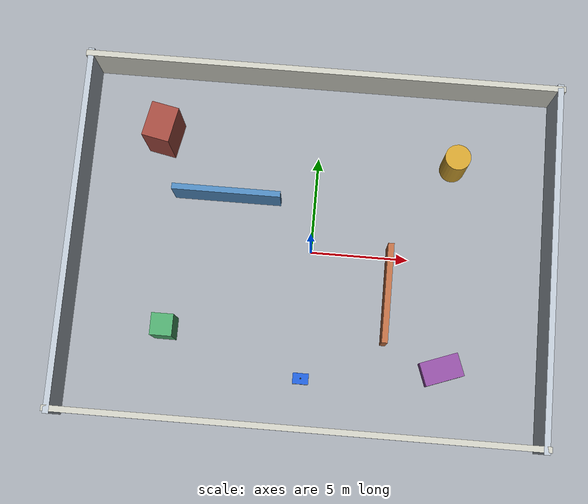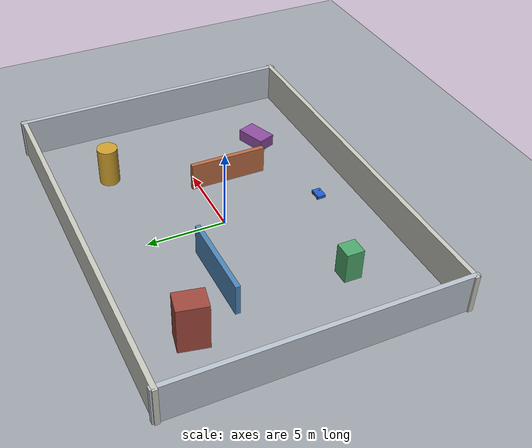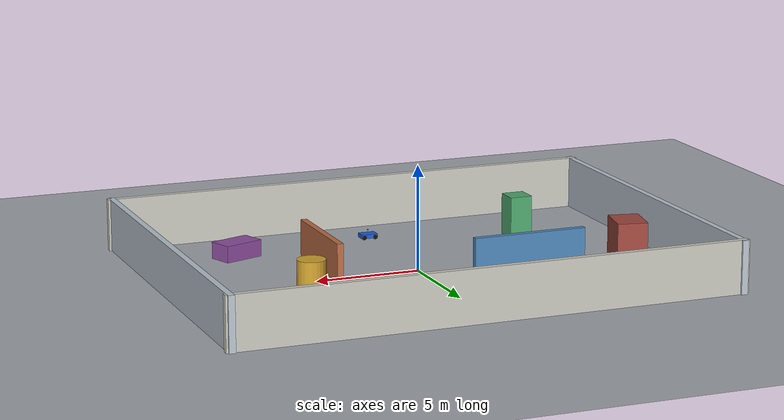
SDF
<?xml version="1.0"?>
<sdf version="1.8">
  <world name="lightning_baseline">
    <physics name="1ms" type="ignored">
      <max_step_size>0.001</max_step_size>
      <real_time_factor>1.0</real_time_factor>
    </physics>

    <plugin filename="libignition-gazebo-physics-system.so"
            name="ignition::gazebo::systems::Physics"/>
    <plugin filename="libignition-gazebo-user-commands-system.so"
            name="ignition::gazebo::systems::UserCommands"/>
    <plugin filename="libignition-gazebo-scene-broadcaster-system.so"
            name="ignition::gazebo::systems::SceneBroadcaster"/>
    <plugin filename="libignition-gazebo-imu-system.so"
            name="ignition::gazebo::systems::Imu"/>
    <plugin filename="libignition-gazebo-sensors-system.so"
            name="ignition::gazebo::systems::Sensors">
      <render_engine>ogre2</render_engine>
    </plugin>

    <light type="directional" name="sun">
      <pose>0 0 12 0 0 0</pose>
      <cast_shadows>true</cast_shadows>
      <diffuse>0.85 0.85 0.85 1</diffuse>
      <specular>0.2 0.2 0.2 1</specular>
      <direction>-0.5 0.2 -0.9</direction>
    </light>

    <model name="ground_plane">
      <static>true</static>
      <link name="ground_link">
        <collision name="collision">
          <geometry><plane><normal>0 0 1</normal><size>40 34</size></plane></geometry>
        </collision>
        <visual name="visual">
          <geometry><plane><normal>0 0 1</normal><size>40 34</size></plane></geometry>
          <material>
            <ambient>0.55 0.57 0.60 1</ambient>
            <diffuse>0.62 0.64 0.67 1</diffuse>
          </material>
        </visual>
      </link>
    </model>

    <!-- Four perimeter walls leave a 24 m x 18 m driving area. -->
    <model name="wall_north"><static>true</static><pose>0 9 1.25 0 0 0</pose><link name="link">
      <collision name="collision"><geometry><box><size>24.5 0.3 2.5</size></box></geometry></collision>
      <visual name="visual"><geometry><box><size>24.5 0.3 2.5</size></box></geometry><material><diffuse>0.78 0.78 0.74 1</diffuse></material></visual>
    </link></model>
    <model name="wall_south"><static>true</static><pose>0 -9 1.25 0 0 0</pose><link name="link">
      <collision name="collision"><geometry><box><size>24.5 0.3 2.5</size></box></geometry></collision>
      <visual name="visual"><geometry><box><size>24.5 0.3 2.5</size></box></geometry><material><diffuse>0.78 0.78 0.74 1</diffuse></material></visual>
    </link></model>
    <model name="wall_east"><static>true</static><pose>12 0 1.25 0 0 0</pose><link name="link">
      <collision name="collision"><geometry><box><size>0.3 18.5 2.5</size></box></geometry></collision>
      <visual name="visual"><geometry><box><size>0.3 18.5 2.5</size></box></geometry><material><diffuse>0.72 0.76 0.80 1</diffuse></material></visual>
    </link></model>
    <model name="wall_west"><static>true</static><pose>-12 0 1.25 0 0 0</pose><link name="link">
      <collision name="collision"><geometry><box><size>0.3 18.5 2.5</size></box></geometry></collision>
      <visual name="visual"><geometry><box><size>0.3 18.5 2.5</size></box></geometry><material><diffuse>0.72 0.76 0.80 1</diffuse></material></visual>
    </link></model>

    <!-- Asymmetric internal geometry provides useful LiDAR constraints. -->
    <model name="inner_wall_a"><static>true</static><pose>-4.5 2.5 1.0 0 0 0</pose><link name="link">
      <collision name="collision"><geometry><box><size>5.5 0.3 2.0</size></box></geometry></collision>
      <visual name="visual"><geometry><box><size>5.5 0.3 2.0</size></box></geometry><material><diffuse>0.30 0.52 0.72 1</diffuse></material></visual>
    </link></model>
    <model name="inner_wall_b"><static>true</static><pose>4.0 -2.0 0.9 0 0 1.5708</pose><link name="link">
      <collision name="collision"><geometry><box><size>5.0 0.3 1.8</size></box></geometry></collision>
      <visual name="visual"><geometry><box><size>5.0 0.3 1.8</size></box></geometry><material><diffuse>0.72 0.42 0.26 1</diffuse></material></visual>
    </link></model>

    <model name="pillar_round"><static>true</static><pose>7 5 1.25 0 0 0</pose><link name="link">
      <collision name="collision"><geometry><cylinder><radius>0.65</radius><length>2.5</length></cylinder></geometry></collision>
      <visual name="visual"><geometry><cylinder><radius>0.65</radius><length>2.5</length></cylinder></geometry><material><diffuse>0.80 0.62 0.18 1</diffuse></material></visual>
    </link></model>
    <model name="pillar_square"><static>true</static><pose>-7 -4.5 1.0 0 0 0</pose><link name="link">
      <collision name="collision"><geometry><box><size>1.1 1.1 2.0</size></box></geometry></collision>
      <visual name="visual"><geometry><box><size>1.1 1.1 2.0</size></box></geometry><material><diffuse>0.30 0.65 0.42 1</diffuse></material></visual>
    </link></model>
    <model name="low_box"><static>true</static><pose>7 -5.5 0.4 0 0 0.35</pose><link name="link">
      <collision name="collision"><geometry><box><size>2.0 1.2 0.8</size></box></geometry></collision>
      <visual name="visual"><geometry><box><size>2.0 1.2 0.8</size></box></geometry><material><diffuse>0.55 0.30 0.62 1</diffuse></material></visual>
    </link></model>
    <model name="tall_box"><static>true</static><pose>-8 5.5 1.5 0 0 -0.2</pose><link name="link">
      <collision name="collision"><geometry><box><size>1.4 1.8 3.0</size></box></geometry></collision>
      <visual name="visual"><geometry><box><size>1.4 1.8 3.0</size></box></geometry><material><diffuse>0.62 0.28 0.24 1</diffuse></material></visual>
    </link></model>

    <include>
      <uri>model://lightning_cart</uri>
      <name>lightning_cart</name>
      <pose>0 -6.5 0 0 0 0</pose>
    </include>
  </world>
</sdf>

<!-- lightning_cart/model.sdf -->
<sdf version="1.8">
  <model name="lightning_cart" xmlns:ignition="http://ignitionrobotics.org/schema">
    <self_collide>false</self_collide>

    <link name="base_link">
      <pose>0 0 0.16 0 0 0</pose>
      <inertial>
        <mass>18.0</mass>
        <inertia>
          <ixx>0.514</ixx><iyy>1.006</iyy><izz>1.398</izz>
          <ixy>0</ixy><ixz>0</ixz><iyz>0</iyz>
        </inertia>
      </inertial>
      <collision name="collision">
        <geometry><box><size>0.80 0.55 0.20</size></box></geometry>
      </collision>
      <visual name="visual">
        <geometry><box><size>0.80 0.55 0.20</size></box></geometry>
        <material>
          <ambient>0.10 0.28 0.62 1</ambient>
          <diffuse>0.12 0.36 0.82 1</diffuse>
        </material>
      </visual>
      <sensor name="imu_sensor" type="imu">
        <pose>0 0 0 0 0 0</pose>
        <always_on>true</always_on>
        <update_rate>200</update_rate>
        <topic>/imu</topic>
        <enable_metrics>true</enable_metrics>
      </sensor>
    </link>

    <link name="livox_frame">
      <pose>0 0 0.44 0 0 0</pose>
      <inertial>
        <mass>0.265</mass>
        <inertia>
          <ixx>0.00045</ixx><iyy>0.00045</iyy><izz>0.00045</izz>
          <ixy>0</ixy><ixz>0</ixz><iyz>0</iyz>
        </inertia>
      </inertial>
      <collision name="collision">
        <geometry><cylinder><radius>0.035</radius><length>0.055</length></cylinder></geometry>
      </collision>
      <visual name="visual">
        <geometry><cylinder><radius>0.035</radius><length>0.055</length></cylinder></geometry>
        <material><diffuse>0.12 0.12 0.12 1</diffuse></material>
      </visual>
      <sensor name="mid360_sim" type="gpu_lidar">
        <pose>0 0 0 0 0 0</pose>
        <ignition_frame_id>livox_frame</ignition_frame_id>
        <always_on>true</always_on>
        <update_rate>10</update_rate>
        <topic>/livox/lidar</topic>
        <visualize>true</visualize>
        <lidar>
          <scan>
            <horizontal>
              <samples>720</samples><resolution>1</resolution>
              <min_angle>-3.14159265</min_angle><max_angle>3.14159265</max_angle>
            </horizontal>
            <vertical>
              <samples>24</samples><resolution>1</resolution>
              <min_angle>-0.12217305</min_angle><max_angle>0.90757121</max_angle>
            </vertical>
          </scan>
          <range><min>0.10</min><max>40.0</max><resolution>0.01</resolution></range>
          <noise><type>gaussian</type><mean>0.0</mean><stddev>0.01</stddev></noise>
        </lidar>
      </sensor>
    </link>

    <link name="front_left_wheel">
      <pose>0.28 0.25 0.12 1.5708 0 0</pose>
      <inertial><mass>1.0</mass><inertia><ixx>0.0078</ixx><iyy>0.0078</iyy><izz>0.0144</izz><ixy>0</ixy><ixz>0</ixz><iyz>0</iyz></inertia></inertial>
      <collision name="collision">
        <geometry><cylinder><radius>0.12</radius><length>0.07</length></cylinder></geometry>
        <surface><friction><ode><mu>1.0</mu><mu2>0.0</mu2><fdir1 ignition:expressed_in="base_link">1 -1 0</fdir1></ode></friction></surface>
      </collision>
      <visual name="visual"><geometry><cylinder><radius>0.12</radius><length>0.07</length></cylinder></geometry><material><diffuse>0.05 0.05 0.05 1</diffuse></material></visual>
    </link>

    <link name="front_right_wheel">
      <pose>0.28 -0.25 0.12 1.5708 0 0</pose>
      <inertial><mass>1.0</mass><inertia><ixx>0.0078</ixx><iyy>0.0078</iyy><izz>0.0144</izz><ixy>0</ixy><ixz>0</ixz><iyz>0</iyz></inertia></inertial>
      <collision name="collision">
        <geometry><cylinder><radius>0.12</radius><length>0.07</length></cylinder></geometry>
        <surface><friction><ode><mu>1.0</mu><mu2>0.0</mu2><fdir1 ignition:expressed_in="base_link">1 1 0</fdir1></ode></friction></surface>
      </collision>
      <visual name="visual"><geometry><cylinder><radius>0.12</radius><length>0.07</length></cylinder></geometry><material><diffuse>0.05 0.05 0.05 1</diffuse></material></visual>
    </link>

    <link name="rear_left_wheel">
      <pose>-0.28 0.25 0.12 1.5708 0 0</pose>
      <inertial><mass>1.0</mass><inertia><ixx>0.0078</ixx><iyy>0.0078</iyy><izz>0.0144</izz><ixy>0</ixy><ixz>0</ixz><iyz>0</iyz></inertia></inertial>
      <collision name="collision">
        <geometry><cylinder><radius>0.12</radius><length>0.07</length></cylinder></geometry>
        <surface><friction><ode><mu>1.0</mu><mu2>0.0</mu2><fdir1 ignition:expressed_in="base_link">1 1 0</fdir1></ode></friction></surface>
      </collision>
      <visual name="visual"><geometry><cylinder><radius>0.12</radius><length>0.07</length></cylinder></geometry><material><diffuse>0.05 0.05 0.05 1</diffuse></material></visual>
    </link>

    <link name="rear_right_wheel">
      <pose>-0.28 -0.25 0.12 1.5708 0 0</pose>
      <inertial><mass>1.0</mass><inertia><ixx>0.0078</ixx><iyy>0.0078</iyy><izz>0.0144</izz><ixy>0</ixy><ixz>0</ixz><iyz>0</iyz></inertia></inertial>
      <collision name="collision">
        <geometry><cylinder><radius>0.12</radius><length>0.07</length></cylinder></geometry>
        <surface><friction><ode><mu>1.0</mu><mu2>0.0</mu2><fdir1 ignition:expressed_in="base_link">1 -1 0</fdir1></ode></friction></surface>
      </collision>
      <visual name="visual"><geometry><cylinder><radius>0.12</radius><length>0.07</length></cylinder></geometry><material><diffuse>0.05 0.05 0.05 1</diffuse></material></visual>
    </link>

    <joint name="front_left_wheel_joint" type="revolute">
      <parent>base_link</parent><child>front_left_wheel</child>
      <axis><xyz expressed_in="__model__">0 1 0</xyz><limit><lower>-1e16</lower><upper>1e16</upper></limit></axis>
    </joint>
    <joint name="front_right_wheel_joint" type="revolute">
      <parent>base_link</parent><child>front_right_wheel</child>
      <axis><xyz expressed_in="__model__">0 1 0</xyz><limit><lower>-1e16</lower><upper>1e16</upper></limit></axis>
    </joint>
    <joint name="rear_left_wheel_joint" type="revolute">
      <parent>base_link</parent><child>rear_left_wheel</child>
      <axis><xyz expressed_in="__model__">0 1 0</xyz><limit><lower>-1e16</lower><upper>1e16</upper></limit></axis>
    </joint>
    <joint name="rear_right_wheel_joint" type="revolute">
      <parent>base_link</parent><child>rear_right_wheel</child>
      <axis><xyz expressed_in="__model__">0 1 0</xyz><limit><lower>-1e16</lower><upper>1e16</upper></limit></axis>
    </joint>
    <joint name="livox_joint" type="fixed">
      <parent>base_link</parent><child>livox_frame</child>
    </joint>

    <plugin filename="ignition-gazebo-mecanum-drive-system"
            name="ignition::gazebo::systems::MecanumDrive">
      <front_left_joint>front_left_wheel_joint</front_left_joint>
      <front_right_joint>front_right_wheel_joint</front_right_joint>
      <back_left_joint>rear_left_wheel_joint</back_left_joint>
      <back_right_joint>rear_right_wheel_joint</back_right_joint>
      <wheel_separation>0.50</wheel_separation>
      <wheelbase>0.56</wheelbase>
      <wheel_radius>0.12</wheel_radius>
      <odom_topic>/odom</odom_topic>
      <tf_topic>/tf</tf_topic>
      <child_frame_id>base_link</child_frame_id>
      <odom_publish_frequency>50</odom_publish_frequency>
      <max_velocity>1.0</max_velocity>
      <min_velocity>-0.5</min_velocity>
      <max_acceleration>1.0</max_acceleration>
      <min_acceleration>-1.0</min_acceleration>
    </plugin>
  </model>
</sdf>
